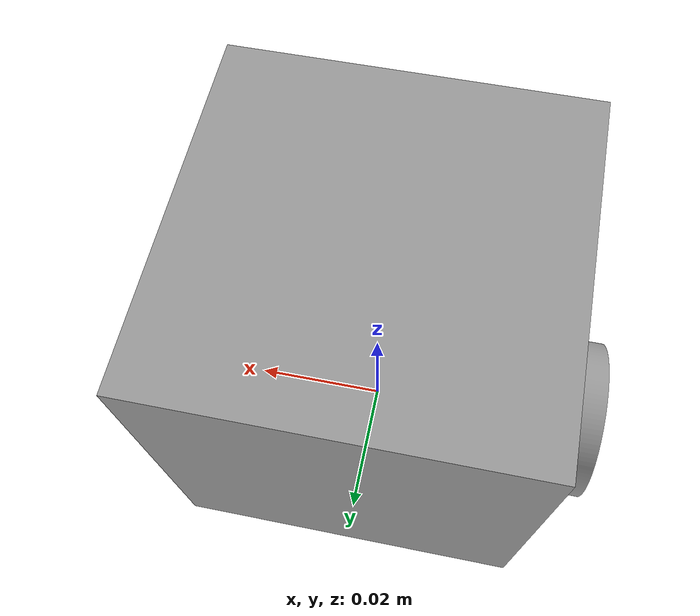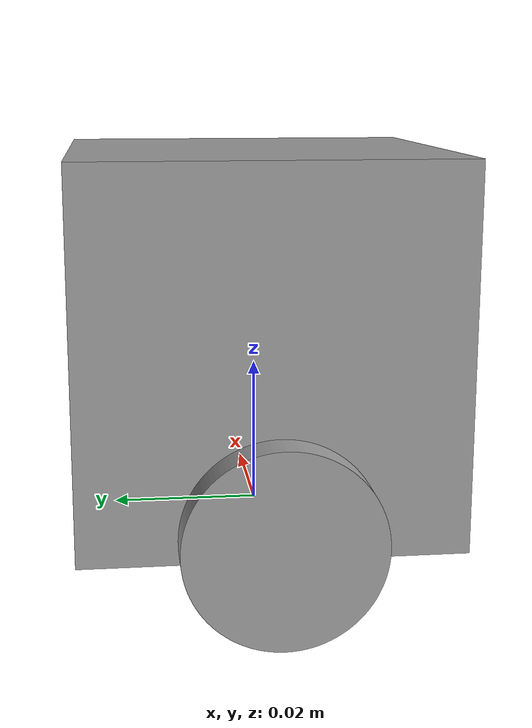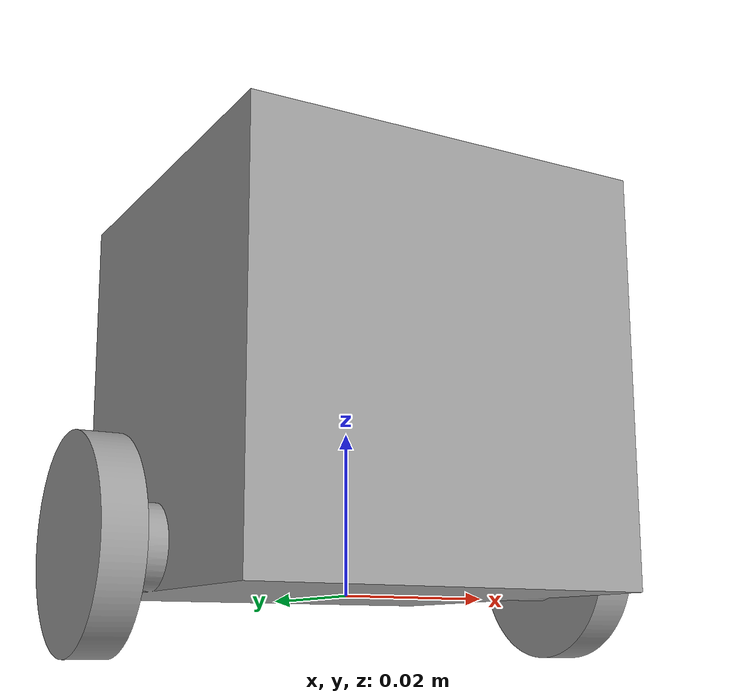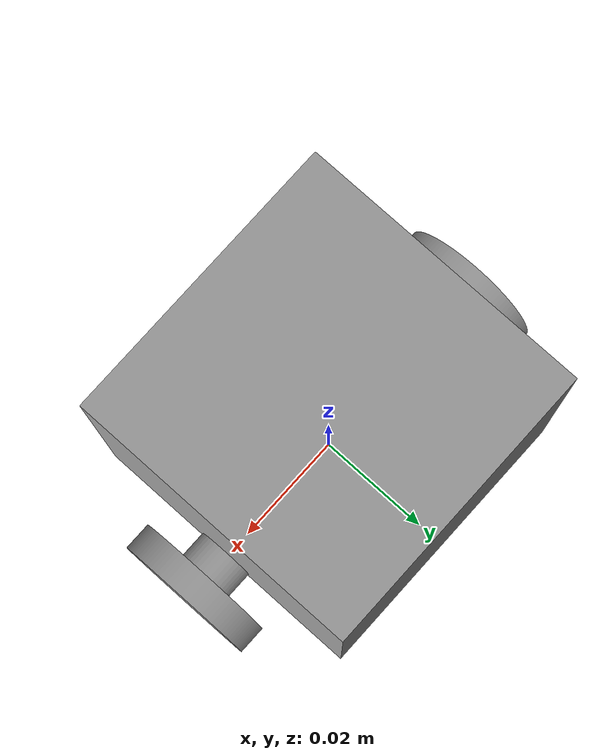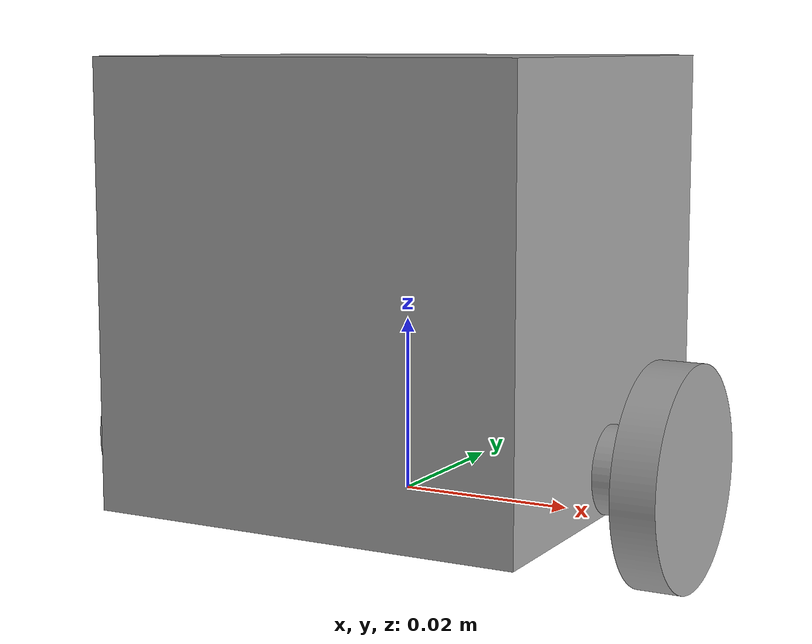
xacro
<?xml version="1.0" ?>
<robot name="urdf_sample" xmlns:xacro="http://www.ros.org/wiki/xacro">

<xacro:include filename="$(find urdf_sample_description)/urdf/materials.xacro" />
<xacro:include filename="$(find urdf_sample_description)/urdf/urdf_sample.trans" />
<link name="base_link">
  <inertial>
    <origin xyz="0.0 0.0 0.024875120932642453" rpy="0 0 0"/>
    <mass value="0.9874153755826697"/>
    <inertia ixx="0.000411" iyy="0.000416" izz="0.000414" ixy="0.0" iyz="0.0" ixz="0.0"/>
  </inertial>
  <visual>
    <origin xyz="0 0 0" rpy="0 0 0"/>
    <geometry>
      <mesh filename="package://urdf_sample_description/meshes/base_link.stl" scale="0.001 0.001 0.001"/>
    </geometry>
    <material name="steel_satin"/>
  </visual>
  <collision>
    <origin xyz="0 0 0" rpy="0 0 0"/>
    <geometry>
      <mesh filename="package://urdf_sample_description/meshes/base_link.stl" scale="0.001 0.001 0.001"/>
    </geometry>
  </collision>
</link>

<link name="wheelB_1">
  <inertial>
    <origin xyz="0.0025000000000000022 7.237528875152536e-18 7.450581991641503e-11" rpy="0 0 0"/>
    <mass value="0.01926679869584365"/>
    <inertia ixx="2e-06" iyy="1e-06" izz="1e-06" ixy="-0.0" iyz="0.0" ixz="-0.0"/>
  </inertial>
  <visual>
    <origin xyz="-0.03 0.0 -0.005" rpy="0 0 0"/>
    <geometry>
      <mesh filename="package://urdf_sample_description/meshes/wheelB_1.stl" scale="0.001 0.001 0.001"/>
    </geometry>
    <material name="steel_satin"/>
  </visual>
  <collision>
    <origin xyz="-0.03 0.0 -0.005" rpy="0 0 0"/>
    <geometry>
      <mesh filename="package://urdf_sample_description/meshes/wheelB_1.stl" scale="0.001 0.001 0.001"/>
    </geometry>
  </collision>
</link>

<link name="wheelA_1">
  <inertial>
    <origin xyz="-0.0025000000000000022 1.0856293312728804e-17 7.450581124279765e-11" rpy="0 0 0"/>
    <mass value="0.01926679869584365"/>
    <inertia ixx="2e-06" iyy="1e-06" izz="1e-06" ixy="-0.0" iyz="0.0" ixz="0.0"/>
  </inertial>
  <visual>
    <origin xyz="0.03 0.0 -0.005" rpy="0 0 0"/>
    <geometry>
      <mesh filename="package://urdf_sample_description/meshes/wheelA_1.stl" scale="0.001 0.001 0.001"/>
    </geometry>
    <material name="steel_satin"/>
  </visual>
  <collision>
    <origin xyz="0.03 0.0 -0.005" rpy="0 0 0"/>
    <geometry>
      <mesh filename="package://urdf_sample_description/meshes/wheelA_1.stl" scale="0.001 0.001 0.001"/>
    </geometry>
  </collision>
</link>

<joint name="rev1" type="continuous">
  <origin xyz="0.03 0.0 0.005" rpy="0 0 0"/>
  <parent link="base_link"/>
  <child link="wheelB_1"/>
  <axis xyz="1.0 0.0 -0.0"/>
</joint>

<joint name="rev2" type="continuous">
  <origin xyz="-0.03 0.0 0.005" rpy="0 0 0"/>
  <parent link="base_link"/>
  <child link="wheelA_1"/>
  <axis xyz="-1.0 0.0 -0.0"/>
</joint>

</robot>

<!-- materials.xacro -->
<robot name="urdf_sample" xmlns:xacro="http://www.ros.org/wiki/xacro" >

<material name="silver_default">
  <color rgba="0.700 0.700 0.700 1.000"/>
</material>
<material name="steel_satin">
  <color rgba="0.6274509803921569 0.6274509803921569 0.6274509803921569 1.0"/>
</material>

</robot>
